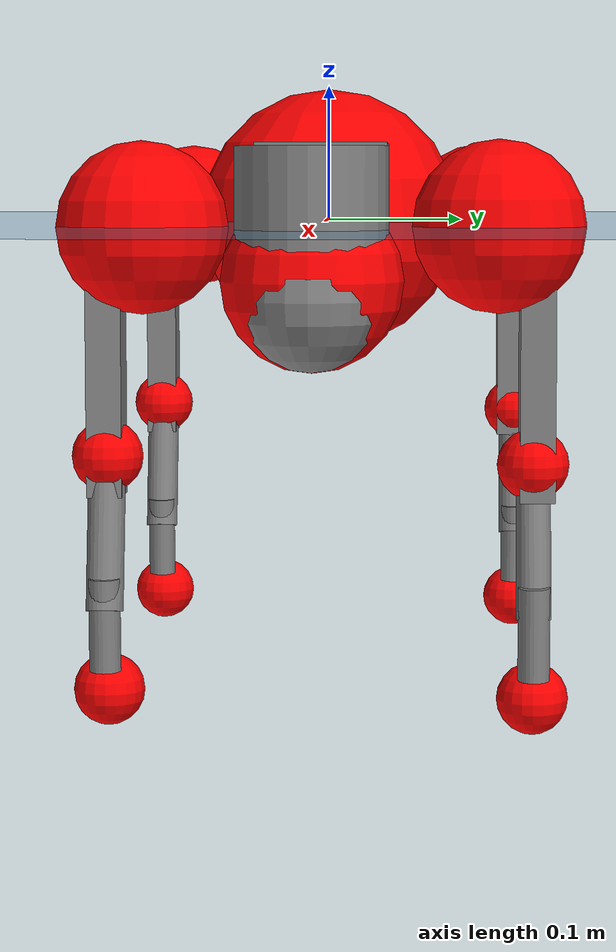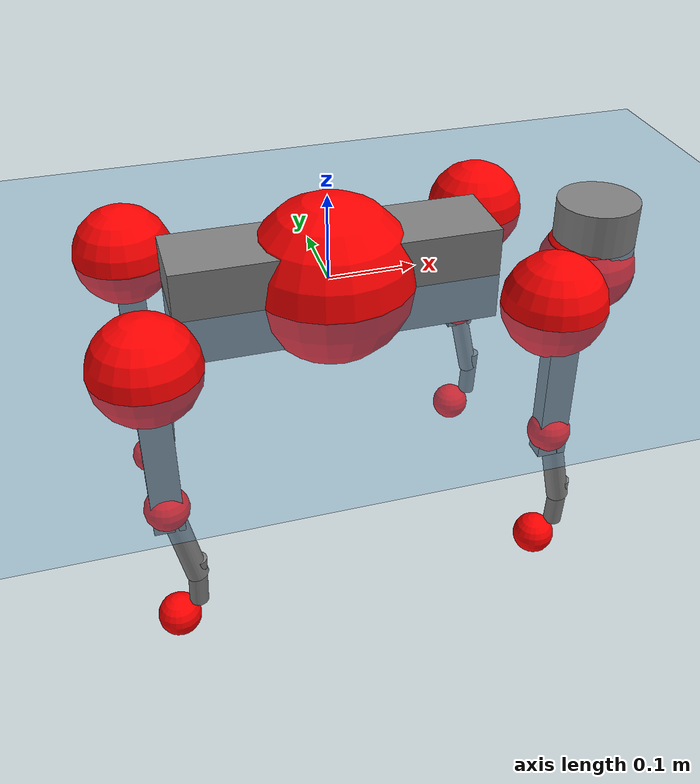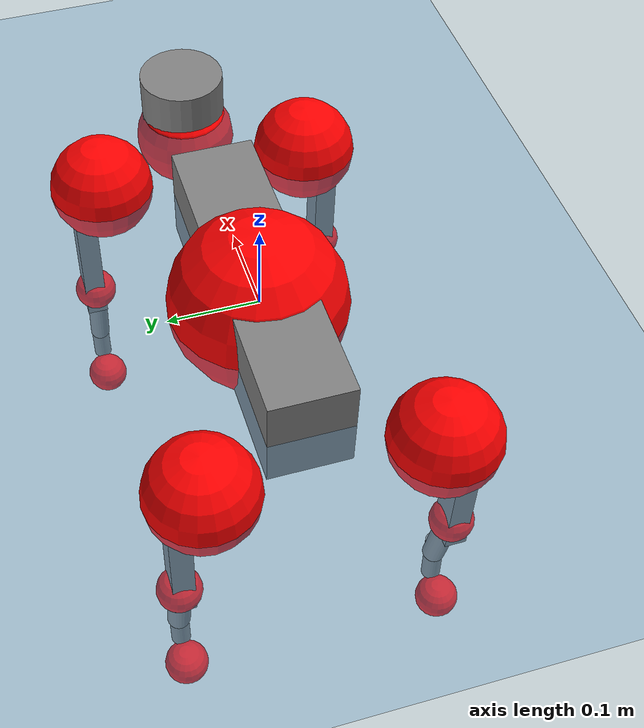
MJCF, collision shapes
<mujoco model="go2">
  <compiler angle="radian" assetdir="assets" balanceinertia="true" inertiafromgeom="false"/>

  <option timestep="0.005" density="1.2" viscosity="2e-05"/>

  <size nkey="1"/>

  <visual>
    <quality shadowsize="8192"/>
    <map shadowclip="0.5"/>
  </visual>

  <default>
    <default class="/">
      <geom contype="0" conaffinity="0" group="1" solref="-1000 -80"/>
      <site size="0.01 0.005 0.005" group="5"/>
      <general forcelimited="true" biastype="affine" gainprm="20" biasprm="0 -20 -0.5"/>
      <default class="go2">
        <joint armature="0.01" damping="0.01" frictionloss="0.2"/>
        <geom condim="1" margin="0.001"/>
        <default class="visual">
          <geom type="mesh" group="2"/>
        </default>
        <default class="collision">
          <geom group="3"/>
          <default class="foot">
            <geom size="0.022 0 0" condim="6" priority="1" friction="0.8 0.02 0.01" solimp="0.015 1 0.022"/>
          </default>
        </default>
        <default class="reward_collision_sphere">
          <geom group="5" rgba="1 0 0 1"/>
        </default>
      </default>
    </default>
  </default>

  <asset>
    <texture type="skybox" colorspace="auto" name="//unnamed_texture_0" builtin="gradient" rgb1="0.95 0.95 0.95" rgb2="0.95 0.95 0.95" width="100" height="600"/>
    <texture type="2d" colorspace="auto" name="texplane" builtin="checker" rgb1="0.345 0.575 0.748" rgb2="0.345 0.575 0.748" markrgb="1 1 1" width="512" height="512"/>
    <material name="MatPlane" class="/" texture="texplane" texuniform="true" texrepeat="2 2" specular="0.9"/>
    <material name="metal" class="/" rgba="0.9 0.95 0.95 1"/>
    <material name="black" class="/" rgba="0 0 0 1"/>
    <material name="white" class="/"/>
    <material name="gray" class="/" rgba="0.671705 0.692426 0.77427 1"/>
    <mesh name="base_0" class="/" file="base_0.obj"/>
    <mesh name="base_1" class="/" file="base_1.obj"/>
    <mesh name="base_2" class="/" file="base_2.obj"/>
    <mesh name="base_3" class="/" file="base_3.obj"/>
    <mesh name="base_4" class="/" file="base_4.obj"/>
    <mesh name="hip_0" class="/" file="hip_0.obj"/>
    <mesh name="hip_1" class="/" file="hip_1.obj"/>
    <mesh name="thigh_0" class="/" file="thigh_0.obj"/>
    <mesh name="thigh_1" class="/" file="thigh_1.obj"/>
    <mesh name="thigh_mirror_0" class="/" file="thigh_mirror_0.obj"/>
    <mesh name="thigh_mirror_1" class="/" file="thigh_mirror_1.obj"/>
    <mesh name="calf_0" class="/" file="calf_0.obj"/>
    <mesh name="calf_1" class="/" file="calf_1.obj"/>
    <mesh name="calf_mirror_0" class="/" file="calf_mirror_0.obj"/>
    <mesh name="calf_mirror_1" class="/" file="calf_mirror_1.obj"/>
    <mesh name="foot" class="/" file="foot.obj"/>
  </asset>

  <worldbody>
    <geom name="floor" class="/" size="100 100 0.125" type="plane" group="0" material="MatPlane"/>
    <light name="toplight_shadow" class="/" pos="0 0 5" dir="0.0990148 0.0990148 -0.990148" type="directional" ambient="0.04 0.04 0.04" diffuse="0.55 0.55 0.55" specular="0.12 0.12 0.12"/>
    <light name="toplight_fill" class="/" pos="0 0 5" dir="0.0990148 0.0990148 -0.990148" type="directional" castshadow="false" ambient="0.04 0.04 0.04" diffuse="0.3 0.3 0.3" specular="0.08 0.08 0.08"/>
    <body name="trunk" childclass="go2" pos="0.00276349 0.000492137 0.000272212" quat="1 0.000272216 -1.28749e-05 -0.000297537">
      <inertial pos="0.0241921 0.000157131 -0.00409761" quat="-0.00104854 0.717312 -0.00788748 0.696706" mass="6.47656" diaginertia="0.213755 0.127507 0.00598335"/>
      <joint name="//unnamed_joint_0" type="free" armature="0" damping="0" frictionloss="0"/>
      <geom name="//unnamed_geom_1" class="visual" material="black" mesh="base_0"/>
      <geom name="//unnamed_geom_2" class="visual" material="black" mesh="base_1"/>
      <geom name="//unnamed_geom_3" class="visual" material="black" mesh="base_2"/>
      <geom name="//unnamed_geom_4" class="visual" material="white" mesh="base_3"/>
      <geom name="//unnamed_geom_5" class="visual" material="gray" mesh="base_4"/>
      <geom name="trunk_1" class="collision" size="0.183686 0.0456531 0.0556626" type="box"/>
      <geom name="trunk_2" class="collision" size="0.0488268 0.0439441" pos="0.32283 0 0.00754826" type="cylinder"/>
      <geom name="trunk_3" class="collision" size="0.0458972" pos="0.331892 0 -0.0452895"/>
      <geom name="//unnamed_geom_9" class="reward_collision_sphere" size="0.0976536"/>
      <geom name="//unnamed_geom_10" class="reward_collision_sphere" size="0.0585922" pos="0.317166 0 -0.0339672"/>
      <site name="imu" pos="-0.0318086 0.0049651 0.0194947" size="0.00976536"/>
      <camera name="track" pos="0 -2.08409 0" quat="0.707107 0.707107 0 0" mode="trackcom"/>
      <camera name="ego_camera" pos="0.353414 0 0.0339672" quat="-0.5 -0.5 0.5 0.5"/>
      <body name="FL_hip" pos="0.218502 0.0488048 -0.00138362" quat="0.999999 0.00114176 -0.000486998 4.66471e-05">
        <inertial pos="-0.00876084 0.00165405 -0.000750564" quat="0.496896 0.499078 0.50568 0.4983" mass="0.635939" diaginertia="0.00166126 0.000705225 0.000118371"/>
        <joint name="FL_hip_joint" pos="0 0 0" axis="0.999957 0.00585971 0.00723977" range="-1.04358 1.04888" armature="0.00856561" damping="0.00780207" frictionloss="0.20849"/>
        <geom name="//unnamed_geom_11" class="visual" material="metal" mesh="hip_0"/>
        <geom name="//unnamed_geom_12" class="visual" material="gray" mesh="hip_1"/>
        <geom name="//unnamed_geom_13" class="collision" size="0.0449207 0.0195307" pos="0 0.0833637 0" quat="0.707107 0.707107 0 0" type="cylinder"/>
        <geom name="//unnamed_geom_14" class="reward_collision_sphere" size="0.0585922" pos="0 0.0729433 0"/>
        <body name="FL_thigh" pos="-0.00289497 0.0989575 -0.000968642" quat="1 -0.000700904 9.96241e-05 8.96103e-05">
          <inertial pos="-0.00402935 -0.0233601 -0.026935" quat="0.828407 0.0812566 -0.0161061 0.553968" mass="1.0742" diaginertia="0.0111596 0.00716612 0.000213875"/>
          <joint name="FL_thigh_joint" pos="0 0 0" axis="0.0127478 0.999848 0.0118623" range="-1.55554 3.49202" armature="0.011251" damping="0" frictionloss="0.17658"/>
          <geom name="//unnamed_geom_15" class="visual" material="metal" mesh="thigh_0"/>
          <geom name="//unnamed_geom_16" class="visual" material="gray" mesh="thigh_1"/>
          <geom name="//unnamed_geom_17" class="collision" size="0.104001 0.0119626 0.0166011" pos="0 0 -0.0803889" quat="0.707107 0 0.707107 0" type="box"/>
          <body name="FL_calf" pos="-0.000622651 -0.00256058 -0.160012" quat="0.999999 0.000242119 0.000507676 -0.00114746">
            <inertial pos="0.00859191 0.000390349 -0.106331" quat="0.712763 0.0129806 -0.0102291 0.70121" mass="0.236668" diaginertia="0.00275506 0.00184265 1.28926e-05"/>
            <joint name="FL_calf_joint" pos="0 0 0" axis="-0.00367129 0.999992 0.00161308" stiffness="0.0016221" range="-2.73181 -0.81831" armature="0.00999003" damping="0" frictionloss="0.189252"/>
            <geom name="//unnamed_geom_18" class="visual" material="gray" mesh="calf_0"/>
            <geom name="//unnamed_geom_19" class="visual" material="black" mesh="calf_1"/>
            <geom name="FL_calf0" class="collision" size="0.0117184 0.0585922" pos="0.00906189 0 -0.0452895" quat="0.994493 0 -0.104807 0" type="cylinder"/>
            <geom name="//unnamed_geom_21" class="collision" size="0.0107419 0.0317374" pos="0.0226547 0 -0.111714" quat="0.999688 0 0.0249974 0" type="cylinder"/>
            <geom name="//unnamed_geom_22" class="visual" pos="0 0 -0.160778" quat="1 0 0 0" material="black" mesh="foot"/>
            <geom name="FL_foot" class="foot" size="0.020763" pos="-0.00226547 0 -0.160778"/>
            <geom name="//unnamed_geom_24" class="reward_collision_sphere" size="0.0244134"/>
            <geom name="//unnamed_geom_25" class="reward_collision_sphere" size="0.0244134" pos="-0.00226547 0 -0.160778"/>
            <site name="FL_foot" class="foot" pos="-0.00226547 0 -0.160778" size="0.00976536"/>
          </body>
        </body>
      </body>
      <body name="FR_hip" pos="0.217054 -0.0460297 -0.0019768" quat="1 0.000314737 -0.000106325 -3.01559e-05">
        <inertial pos="-0.00367245 -0.00233892 -0.00226738" quat="0.496119 0.508244 0.491708 0.503763" mass="0.643225" diaginertia="0.00170209 0.000733394 0.000121398"/>
        <joint name="FR_hip_joint" pos="0 0 0" axis="0.999916 0.0122905 -0.00423282" range="-1.10261 1.03394" armature="0.00954821" damping="0.0191317" frictionloss="0.167963"/>
        <geom name="//unnamed_geom_26" class="visual" pos="0 2.50215e-09 1.07322e-07" quat="4.63268e-05 1 0 0" material="metal" mesh="hip_0"/>
        <geom name="//unnamed_geom_27" class="visual" pos="0 4.05628e-09 -2.65449e-07" quat="4.63268e-05 1 0 0" material="gray" mesh="hip_1"/>
        <geom name="//unnamed_geom_28" class="collision" size="0.0449207 0.0195307" pos="0 -0.0833637 0" quat="0.707107 0.707107 0 0" type="cylinder"/>
        <geom name="//unnamed_geom_29" class="reward_collision_sphere" size="0.0585922" pos="0 -0.0729433 0"/>
        <body name="FR_thigh" pos="0.000216572 -0.0980653 0.00272602" quat="1 2.53143e-05 -3.88492e-05 9.25086e-06">
          <inertial pos="-0.00532506 0.0253811 -0.0250273" quat="0.551723 -0.0194416 0.0849769 0.82946" mass="1.07196" diaginertia="0.0112002 0.00707659 0.000215596"/>
          <joint name="FR_thigh_joint" pos="0 0 0" axis="-0.0105577 -0.999936 -0.00405691" stiffness="0.000392934" range="-3.47402 1.59714" armature="0.0100434" damping="0.00532587" frictionloss="0.185311"/>
          <geom name="//unnamed_geom_30" class="visual" material="metal" mesh="thigh_mirror_0"/>
          <geom name="//unnamed_geom_31" class="visual" material="gray" mesh="thigh_mirror_1"/>
          <geom name="//unnamed_geom_32" class="collision" size="0.104001 0.0119626 0.0166011" pos="0 0 -0.0803889" quat="0.707107 0 0.707107 0" type="box"/>
          <body name="FR_calf" pos="-0.000288137 0.000712474 -0.157604" quat="0.999999 -0.000808278 0.000821794 0.000181479">
            <inertial pos="0.00906199 -0.0015037 -0.104171" quat="0.704079 -0.00901869 -0.00119121 0.710063" mass="0.219734" diaginertia="0.00286809 0.00188563 1.35852e-05"/>
            <joint name="FR_calf_joint" pos="0 0 0" axis="-0.00411372 -0.999931 -0.0109949" stiffness="0.010269" range="0.785122 2.72315" armature="0.00926099" damping="0.0217724" frictionloss="0.222661"/>
            <geom name="//unnamed_geom_33" class="visual" material="gray" mesh="calf_mirror_0"/>
            <geom name="//unnamed_geom_34" class="visual" material="black" mesh="calf_mirror_1"/>
            <geom name="FR_calf0" class="collision" size="0.012695 0.0585922" pos="0.0113274 0 -0.0452895" quat="0.995004 0 -0.0998334 0" type="cylinder"/>
            <geom name="//unnamed_geom_36" class="collision" size="0.0107419 0.0317374" pos="0.0226547 0 -0.111714" quat="0.999688 0 0.0249974 0" type="cylinder"/>
            <geom name="//unnamed_geom_37" class="visual" pos="0 0 -0.160778" quat="1 0 0 0" material="black" mesh="foot"/>
            <geom name="FR_foot" class="foot" size="0.0213188" pos="-0.00226547 0 -0.160778"/>
            <geom name="//unnamed_geom_39" class="reward_collision_sphere" size="0.0244134"/>
            <geom name="//unnamed_geom_40" class="reward_collision_sphere" size="0.0244134" pos="-0.00226547 0 -0.160778"/>
            <site name="FR_foot" class="foot" pos="-0.00226547 0 -0.160778" size="0.00976536"/>
          </body>
        </body>
      </body>
      <body name="RL_hip" pos="-0.217495 0.0456424 0.000345094" quat="1 2.77398e-05 -0.000142399 -0.000404995">
        <inertial pos="0.00870695 -2.07454e-05 0.000191462" quat="0.513514 0.492573 0.488771 0.504755" mass="0.621745" diaginertia="0.00166322 0.000731703 0.000113608"/>
        <joint name="RL_hip_joint" pos="0 0 0" axis="-0.999978 0.000639747 0.00656311" range="-0.998117 1.05064" armature="0.0098398" damping="0.0167673" frictionloss="0.194659"/>
        <geom name="//unnamed_geom_41" class="visual" pos="-3.2922e-09 0 -6.45348e-07" quat="4.63268e-05 0 1 0" material="metal" mesh="hip_0"/>
        <geom name="//unnamed_geom_42" class="visual" pos="-5.33706e-09 0 -5.72332e-07" quat="4.63268e-05 0 1 0" material="gray" mesh="hip_1"/>
        <geom name="//unnamed_geom_43" class="collision" size="0.0449207 0.0195307" pos="0 0.0833637 0" quat="0.707107 0.707107 0 0" type="cylinder"/>
        <geom name="//unnamed_geom_44" class="reward_collision_sphere" size="0.0585922" pos="0 0.0729433 0"/>
        <body name="RL_thigh" pos="0.00201473 0.100202 -0.00069984" quat="1 -0.000204241 6.53104e-05 1.00472e-05">
          <inertial pos="-0.00506549 -0.020672 -0.0246219" quat="0.829193 0.0719808 -0.0243268 0.553774" mass="1.09419" diaginertia="0.0111067 0.00740339 0.000216148"/>
          <joint name="RL_thigh_joint" pos="0 0 0" axis="-0.00382498 0.999946 -0.00966776" range="-0.474358 4.58076" armature="0.0110734" damping="0.00304064" frictionloss="0.222713"/>
          <geom name="//unnamed_geom_45" class="visual" material="metal" mesh="thigh_0"/>
          <geom name="//unnamed_geom_46" class="visual" material="gray" mesh="thigh_1"/>
          <geom name="//unnamed_geom_47" class="collision" size="0.104001 0.0119626 0.0166011" pos="0 0 -0.0803889" quat="0.707107 0 0.707107 0" type="box"/>
          <body name="RL_calf" pos="-0.00244789 0.00243027 -0.163386" quat="0.999999 -0.000520119 -0.00052769 0.000739328">
            <inertial pos="0.00663073 -0.000489165 -0.104783" quat="0.716553 0.00162118 -0.0064144 0.697501" mass="0.217419" diaginertia="0.00276432 0.00177682 1.31216e-05"/>
            <joint name="RL_calf_joint" pos="0 0 0" axis="-0.0028796 0.999856 0.0167231" range="-2.73992 -0.88196" armature="0.00932235" damping="0.00783243" frictionloss="0.168607"/>
            <geom name="//unnamed_geom_48" class="visual" material="gray" mesh="calf_0"/>
            <geom name="//unnamed_geom_49" class="visual" material="black" mesh="calf_1"/>
            <geom name="RL_calf0" class="collision" size="0.012695 0.0585922" pos="0.0113274 0 -0.0452895" quat="0.995004 0 -0.0998334 0" type="cylinder"/>
            <geom name="//unnamed_geom_51" class="collision" size="0.0107419 0.0317374" pos="0.0226547 0 -0.111714" quat="0.999688 0 0.0249974 0" type="cylinder"/>
            <geom name="//unnamed_geom_52" class="visual" pos="0 0 -0.160778" quat="1 0 0 0" material="black" mesh="foot"/>
            <geom name="RL_foot" class="foot" size="0.0170881" pos="-0.00226547 0 -0.160778"/>
            <geom name="//unnamed_geom_54" class="reward_collision_sphere" size="0.0244134"/>
            <geom name="//unnamed_geom_55" class="reward_collision_sphere" size="0.0244134" pos="-0.00226547 0 -0.160778"/>
            <site name="RL_foot" class="foot" pos="-0.00226547 0 -0.160778" size="0.00976536"/>
          </body>
        </body>
      </body>
      <body name="RR_hip" pos="-0.221053 -0.0496943 -0.000618108" quat="1 1.7882e-05 -7.91803e-05 2.34479e-05">
        <inertial pos="0.00863389 -0.000432656 0.000527619" quat="0.506575 0.50175 0.494539 0.497051" mass="0.640837" diaginertia="0.00171092 0.000763819 0.000122458"/>
        <joint name="RR_hip_joint" pos="0 0 0" axis="-0.999927 0.011441 0.00383386" range="-1.04662 1.04335" armature="0.00965319" damping="0.0107875" frictionloss="0.200451"/>
        <geom name="//unnamed_geom_56" class="visual" pos="3.28906e-09 2.50215e-09 -7.5267e-07" quat="2.14617e-09 4.63268e-05 4.63268e-05 -1" material="metal" mesh="hip_0"/>
        <geom name="//unnamed_geom_57" class="visual" pos="5.34482e-09 4.05628e-09 -3.06882e-07" quat="2.14617e-09 4.63268e-05 4.63268e-05 -1" material="gray" mesh="hip_1"/>
        <geom name="//unnamed_geom_58" class="collision" size="0.0449207 0.0195307" pos="0 -0.0833637 0" quat="0.707107 0.707107 0 0" type="cylinder"/>
        <geom name="//unnamed_geom_59" class="reward_collision_sphere" size="0.0585922" pos="0 -0.0729433 0"/>
        <body name="RR_thigh" pos="0.000250161 -0.0998172 0.00143378" quat="1 -0.000280602 0.000352619 -9.94619e-05">
          <inertial pos="-0.00495281 0.0235517 -0.0250632" quat="0.553985 -0.0131184 0.0925428 0.827263" mass="1.08931" diaginertia="0.0111177 0.00746906 0.000222298"/>
          <joint name="RR_thigh_joint" pos="0 0 0" axis="0.00962902 -0.999954 -0.0001775" range="-4.53757 0.5282" armature="0.0109958" damping="0.00161208" frictionloss="0.181444"/>
          <geom name="//unnamed_geom_60" class="visual" material="metal" mesh="thigh_mirror_0"/>
          <geom name="//unnamed_geom_61" class="visual" material="gray" mesh="thigh_mirror_1"/>
          <geom name="//unnamed_geom_62" class="collision" size="0.104001 0.0119626 0.0166011" pos="0 0 -0.0803889" quat="0.707107 0 0.707107 0" type="box"/>
          <body name="RR_calf" pos="0.000580675 0.000473362 -0.160533" quat="1 -0.000179407 4.54707e-05 -0.000258253">
            <inertial pos="0.00424822 -0.00168637 -0.104334" quat="0.703528 -0.00462789 0.00185525 0.71065" mass="0.234519" diaginertia="0.00271688 0.00187621 1.30747e-05"/>
            <joint name="RR_calf_joint" pos="0 0 0" axis="0.000709686 -0.999999 -0.00116826" stiffness="0.000582868" range="0.83337 2.77631" armature="0.00983315" damping="0.0101269" frictionloss="0.220112"/>
            <geom name="//unnamed_geom_63" class="visual" material="gray" mesh="calf_mirror_0"/>
            <geom name="//unnamed_geom_64" class="visual" material="black" mesh="calf_mirror_1"/>
            <geom name="RR_calf0" class="collision" size="0.012695 0.0585922" pos="0.0113274 0 -0.0452895" quat="0.995004 0 -0.0998334 0" type="cylinder"/>
            <geom name="//unnamed_geom_66" class="collision" size="0.0107419 0.0317374" pos="0.0226547 0 -0.111714" quat="0.999688 0 0.0249974 0" type="cylinder"/>
            <geom name="//unnamed_geom_67" class="visual" pos="0 0 -0.160778" quat="1 0 0 0" material="black" mesh="foot"/>
            <geom name="RR_foot" class="foot" size="0.0230231" pos="-0.00226547 0 -0.160778"/>
            <geom name="//unnamed_geom_69" class="reward_collision_sphere" size="0.0244134"/>
            <geom name="//unnamed_geom_70" class="reward_collision_sphere" size="0.0244134" pos="-0.00226547 0 -0.160778"/>
            <site name="RR_foot" class="foot" pos="-0.00226547 0 -0.160778" size="0.00976536"/>
          </body>
        </body>
      </body>
    </body>
  </worldbody>

  <contact>
    <pair class="/" geom1="floor" geom2="FL_foot" name="//unnamed_contact_0"/>
    <pair class="/" geom1="floor" geom2="FR_foot" name="//unnamed_contact_1"/>
    <pair class="/" geom1="floor" geom2="RL_foot" name="//unnamed_contact_2"/>
    <pair class="/" geom1="floor" geom2="RR_foot" name="//unnamed_contact_3"/>
  </contact>

  <actuator>
    <general name="FL_hip" class="/" joint="FL_hip_joint" forcerange="-23.2687 23.2687" gainprm="19.4774" biasprm="0 -19.4774 -0.482867"/>
    <general name="FL_thigh" class="/" joint="FL_thigh_joint" forcerange="-20.7471 20.7471" gainprm="19.4774" biasprm="0 -19.4774 -0.482867"/>
    <general name="FL_calf" class="/" joint="FL_calf_joint" forcerange="-46.4758 46.4758" gainprm="19.4774" biasprm="0 -19.4774 -0.482867"/>
    <general name="FR_hip" class="/" joint="FR_hip_joint" forcerange="-23.1875 23.1875" gainprm="19.4774" biasprm="0 -19.4774 -0.482867"/>
    <general name="FR_thigh" class="/" joint="FR_thigh_joint" forcerange="-22.4365 22.4365" gainprm="19.4774" biasprm="0 -19.4774 -0.482867"/>
    <general name="FR_calf" class="/" joint="FR_calf_joint" forcerange="-47.9816 47.9816" gainprm="19.4774" biasprm="0 -19.4774 -0.482867"/>
    <general name="RL_hip" class="/" joint="RL_hip_joint" forcerange="-23.1172 23.1172" gainprm="19.4774" biasprm="0 -19.4774 -0.482867"/>
    <general name="RL_thigh" class="/" joint="RL_thigh_joint" forcerange="-25.1365 25.1365" gainprm="19.4774" biasprm="0 -19.4774 -0.482867"/>
    <general name="RL_calf" class="/" joint="RL_calf_joint" forcerange="-41.9876 41.9876" gainprm="19.4774" biasprm="0 -19.4774 -0.482867"/>
    <general name="RR_hip" class="/" joint="RR_hip_joint" forcerange="-23.1803 23.1803" gainprm="19.4774" biasprm="0 -19.4774 -0.482867"/>
    <general name="RR_thigh" class="/" joint="RR_thigh_joint" forcerange="-22.8262 22.8262" gainprm="19.4774" biasprm="0 -19.4774 -0.482867"/>
    <general name="RR_calf" class="/" joint="RR_calf_joint" forcerange="-40.8492 40.8492" gainprm="19.4774" biasprm="0 -19.4774 -0.482867"/>
  </actuator>

  <sensor>
    <gyro site="imu" name="imu_angular_velocity"/>
    <velocimeter site="imu" name="imu_linear_velocity"/>
    <framelinvel objtype="site" objname="FL_foot" name="FL_foot_global_linear_velocity"/>
    <framelinvel objtype="site" objname="FR_foot" name="FR_foot_global_linear_velocity"/>
    <framelinvel objtype="site" objname="RL_foot" name="RL_foot_global_linear_velocity"/>
    <framelinvel objtype="site" objname="RR_foot" name="RR_foot_global_linear_velocity"/>
  </sensor>

  <keyframe>
    <key name="home" qpos="0 0 0.325 1 0 0 0 0.1 0.8 -1.5 -0.1 -0.8 1.5 -0.1 0.8 -1.5 0.1 -0.8 1.5"/>
  </keyframe>
</mujoco>
